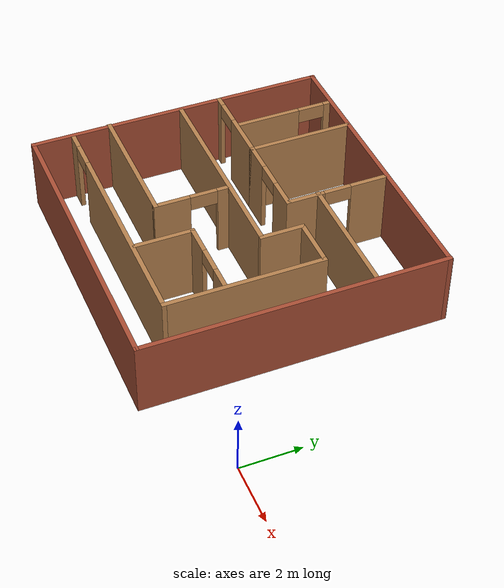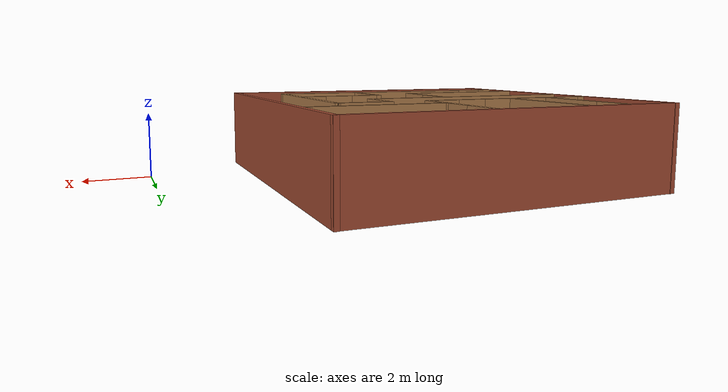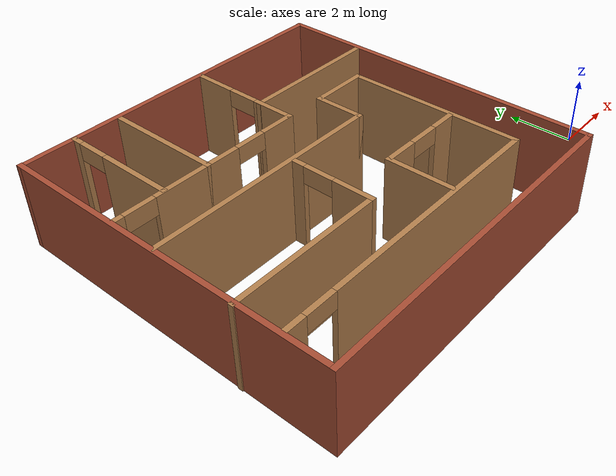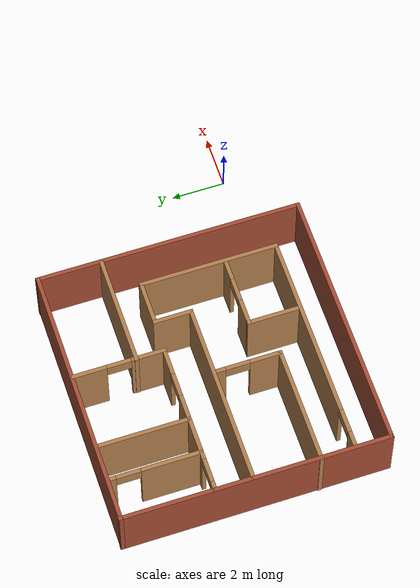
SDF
<?xml version='1.0'?>
<sdf version='1.7'>
  <model name='Arena_10m'>
    <pose>-6.53932 3.14683 0 0 -0 0</pose>
    <link name='Wall_43'>
      <collision name='Wall_43_Collision'>
        <geometry>
          <box>
            <size>10.0304 0.15 2.5</size>
          </box>
        </geometry>
        <pose>0 0 1.25 0 -0 0</pose>
      </collision>
      <visual name='Wall_43_Visual'>
        <pose>0 0 1.25 0 -0 0</pose>
        <geometry>
          <box>
            <size>10.0304 0.15 2.5</size>
          </box>
        </geometry>
        <material>
          <script>
            <uri>file://media/materials/scripts/gazebo.material</uri>
            <name>Gazebo/Bricks</name>
          </script>
          <ambient>1 1 1 1</ambient>
        </material>
        <meta>
          <layer>0</layer>
        </meta>
      </visual>
      <pose>-6.43555 0 0 0 -0 -1.5708</pose>
    </link>
    <link name='Wall_44'>
      <collision name='Wall_44_Collision'>
        <geometry>
          <box>
            <size>10 0.15 2.5</size>
          </box>
        </geometry>
        <pose>0 0 1.25 0 -0 0</pose>
      </collision>
      <visual name='Wall_44_Visual'>
        <pose>0 0 1.25 0 -0 0</pose>
        <geometry>
          <box>
            <size>10 0.15 2.5</size>
          </box>
        </geometry>
        <material>
          <script>
            <uri>file://media/materials/scripts/gazebo.material</uri>
            <name>Gazebo/Bricks</name>
          </script>
          <ambient>1 1 1 1</ambient>
        </material>
        <meta>
          <layer>0</layer>
        </meta>
      </visual>
      <pose>-1.51055 -4.94021 0 0 -0 0</pose>
    </link>
    <link name='Wall_45'>
      <collision name='Wall_45_Collision'>
        <geometry>
          <box>
            <size>10.0304 0.15 2.5</size>
          </box>
        </geometry>
        <pose>0 0 1.25 0 -0 0</pose>
      </collision>
      <visual name='Wall_45_Visual'>
        <pose>0 0 1.25 0 -0 0</pose>
        <geometry>
          <box>
            <size>10.0304 0.15 2.5</size>
          </box>
        </geometry>
        <material>
          <script>
            <uri>file://media/materials/scripts/gazebo.material</uri>
            <name>Gazebo/Bricks</name>
          </script>
          <ambient>1 1 1 1</ambient>
        </material>
        <meta>
          <layer>0</layer>
        </meta>
      </visual>
      <pose>3.41445 0 0 0 -0 1.5708</pose>
    </link>
    <link name='Wall_46'>
      <collision name='Wall_46_Collision'>
        <geometry>
          <box>
            <size>10 0.15 2.5</size>
          </box>
        </geometry>
        <pose>0 0 1.25 0 -0 0</pose>
      </collision>
      <visual name='Wall_46_Visual'>
        <pose>0 0 1.25 0 -0 0</pose>
        <geometry>
          <box>
            <size>10 0.15 2.5</size>
          </box>
        </geometry>
        <material>
          <script>
            <uri>file://media/materials/scripts/gazebo.material</uri>
            <name>Gazebo/Bricks</name>
          </script>
          <ambient>1 1 1 1</ambient>
        </material>
        <meta>
          <layer>0</layer>
        </meta>
      </visual>
      <pose>-1.51055 4.925 0 0 -0 3.14159</pose>
    </link>
    <link name='Wall_49'>
      <pose>-5.00511 1.51546 0 0 -0 0</pose>
      <visual name='Wall_49_Visual_0'>
        <pose>-1.30285 0 1.25 0 -0 0</pose>
        <geometry>
          <box>
            <size>0.394294 0.15 2.5</size>
          </box>
        </geometry>
        <material>
          <script>
            <uri>file://media/materials/scripts/gazebo.material</uri>
            <name>Gazebo/Wood</name>
          </script>
          <ambient>1 1 1 1</ambient>
        </material>
        <meta>
          <layer>0</layer>
        </meta>
      </visual>
      <collision name='Wall_49_Collision_0'>
        <geometry>
          <box>
            <size>0.394294 0.15 2.5</size>
          </box>
        </geometry>
        <pose>-1.30285 0 1.25 0 -0 0</pose>
      </collision>
      <visual name='Wall_49_Visual_1'>
        <pose>0.647147 0 1.25 0 -0 0</pose>
        <geometry>
          <box>
            <size>1.70571 0.15 2.5</size>
          </box>
        </geometry>
        <material>
          <script>
            <uri>file://media/materials/scripts/gazebo.material</uri>
            <name>Gazebo/Wood</name>
          </script>
          <ambient>1 1 1 1</ambient>
        </material>
        <meta>
          <layer>0</layer>
        </meta>
      </visual>
      <collision name='Wall_49_Collision_1'>
        <geometry>
          <box>
            <size>1.70571 0.15 2.5</size>
          </box>
        </geometry>
        <pose>0.647147 0 1.25 0 -0 0</pose>
      </collision>
      <visual name='Wall_49_Visual_2'>
        <pose>-0.655706 0 2.25 0 -0 0</pose>
        <geometry>
          <box>
            <size>0.9 0.15 0.5</size>
          </box>
        </geometry>
        <material>
          <script>
            <uri>file://media/materials/scripts/gazebo.material</uri>
            <name>Gazebo/Wood</name>
          </script>
          <ambient>1 1 1 1</ambient>
        </material>
        <meta>
          <layer>0</layer>
        </meta>
      </visual>
      <collision name='Wall_49_Collision_2'>
        <geometry>
          <box>
            <size>0.9 0.15 0.5</size>
          </box>
        </geometry>
        <pose>-0.655706 0 2.25 0 -0 0</pose>
      </collision>
    </link>
    <link name='Wall_50'>
      <collision name='Wall_50_Collision'>
        <geometry>
          <box>
            <size>3.5 0.15 2.5</size>
          </box>
        </geometry>
        <pose>0 0 1.25 0 -0 0</pose>
      </collision>
      <visual name='Wall_50_Visual'>
        <pose>0 0 1.25 0 -0 0</pose>
        <geometry>
          <box>
            <size>3.5 0.15 2.5</size>
          </box>
        </geometry>
        <material>
          <script>
            <uri>file://media/materials/scripts/gazebo.material</uri>
            <name>Gazebo/Wood</name>
          </script>
          <ambient>1 1 1 1</ambient>
        </material>
        <meta>
          <layer>0</layer>
        </meta>
      </visual>
      <pose>-3.58011 3.19046 0 0 -0 1.5708</pose>
    </link>
    <link name='Wall_52'>
      <pose>-4.91782 3.22333 0 0 -0 1.5708</pose>
      <visual name='Wall_52_Visual_0'>
        <pose>-0.625755 0 1.25 0 -0 0</pose>
        <geometry>
          <box>
            <size>2.24849 0.15 2.5</size>
          </box>
        </geometry>
        <material>
          <script>
            <uri>file://media/materials/scripts/gazebo.material</uri>
            <name>Gazebo/Wood</name>
          </script>
          <ambient>1 1 1 1</ambient>
        </material>
        <meta>
          <layer>0</layer>
        </meta>
      </visual>
      <collision name='Wall_52_Collision_0'>
        <geometry>
          <box>
            <size>2.24849 0.15 2.5</size>
          </box>
        </geometry>
        <pose>-0.625755 0 1.25 0 -0 0</pose>
      </collision>
      <visual name='Wall_52_Visual_1'>
        <pose>1.57424 0 1.25 0 -0 0</pose>
        <geometry>
          <box>
            <size>0.35151 0.15 2.5</size>
          </box>
        </geometry>
        <material>
          <script>
            <uri>file://media/materials/scripts/gazebo.material</uri>
            <name>Gazebo/Wood</name>
          </script>
          <ambient>1 1 1 1</ambient>
        </material>
        <meta>
          <layer>0</layer>
        </meta>
      </visual>
      <collision name='Wall_52_Collision_1'>
        <geometry>
          <box>
            <size>0.35151 0.15 2.5</size>
          </box>
        </geometry>
        <pose>1.57424 0 1.25 0 -0 0</pose>
      </collision>
      <visual name='Wall_52_Visual_2'>
        <pose>0.94849 0 2.25 0 -0 0</pose>
        <geometry>
          <box>
            <size>0.9 0.15 0.5</size>
          </box>
        </geometry>
        <material>
          <script>
            <uri>file://media/materials/scripts/gazebo.material</uri>
            <name>Gazebo/Wood</name>
          </script>
          <ambient>1 1 1 1</ambient>
        </material>
        <meta>
          <layer>0</layer>
        </meta>
      </visual>
      <collision name='Wall_52_Collision_2'>
        <geometry>
          <box>
            <size>0.9 0.15 0.5</size>
          </box>
        </geometry>
        <pose>0.94849 0 2.25 0 -0 0</pose>
      </collision>
    </link>
    <link name='Wall_55'>
      <collision name='Wall_55_Collision'>
        <geometry>
          <box>
            <size>7 0.15 2.5</size>
          </box>
        </geometry>
        <pose>0 0 1.25 0 -0 0</pose>
      </collision>
      <visual name='Wall_55_Visual'>
        <pose>0 0 1.25 0 -0 0</pose>
        <geometry>
          <box>
            <size>7 0.15 2.5</size>
          </box>
        </geometry>
        <material>
          <script>
            <uri>file://media/materials/scripts/gazebo.material</uri>
            <name>Gazebo/Wood</name>
          </script>
          <ambient>1 1 1 1</ambient>
        </material>
        <meta>
          <layer>0</layer>
        </meta>
      </visual>
      <pose>-2.97223 0.128097 0 0 -0 0</pose>
    </link>
    <link name='Wall_57'>
      <pose>-2.15511 1.51546 0 0 -0 0</pose>
      <visual name='Wall_57_Visual_0'>
        <pose>-0.979609 0 1.25 0 -0 0</pose>
        <geometry>
          <box>
            <size>1.04078 0.15 2.5</size>
          </box>
        </geometry>
        <material>
          <script>
            <uri>file://media/materials/scripts/gazebo.material</uri>
            <name>Gazebo/Wood</name>
          </script>
          <ambient>1 1 1 1</ambient>
        </material>
        <meta>
          <layer>0</layer>
        </meta>
      </visual>
      <collision name='Wall_57_Collision_0'>
        <geometry>
          <box>
            <size>1.04078 0.15 2.5</size>
          </box>
        </geometry>
        <pose>-0.979609 0 1.25 0 -0 0</pose>
      </collision>
      <visual name='Wall_57_Visual_1'>
        <pose>0.970391 0 1.25 0 -0 0</pose>
        <geometry>
          <box>
            <size>1.05922 0.15 2.5</size>
          </box>
        </geometry>
        <material>
          <script>
            <uri>file://media/materials/scripts/gazebo.material</uri>
            <name>Gazebo/Wood</name>
          </script>
          <ambient>1 1 1 1</ambient>
        </material>
        <meta>
          <layer>0</layer>
        </meta>
      </visual>
      <collision name='Wall_57_Collision_1'>
        <geometry>
          <box>
            <size>1.05922 0.15 2.5</size>
          </box>
        </geometry>
        <pose>0.970391 0 1.25 0 -0 0</pose>
      </collision>
      <visual name='Wall_57_Visual_2'>
        <pose>-0.009218 0 2.25 0 -0 0</pose>
        <geometry>
          <box>
            <size>0.9 0.15 0.5</size>
          </box>
        </geometry>
        <material>
          <script>
            <uri>file://media/materials/scripts/gazebo.material</uri>
            <name>Gazebo/Wood</name>
          </script>
          <ambient>1 1 1 1</ambient>
        </material>
        <meta>
          <layer>0</layer>
        </meta>
      </visual>
      <collision name='Wall_57_Collision_2'>
        <geometry>
          <box>
            <size>0.9 0.15 0.5</size>
          </box>
        </geometry>
        <pose>-0.009218 0 2.25 0 -0 0</pose>
      </collision>
    </link>
    <link name='Wall_58'>
      <pose>-0.730105 3.19046 0 0 -0 1.5708</pose>
      <visual name='Wall_58_Visual_0'>
        <pose>-1.09818 0 1.25 0 -0 0</pose>
        <geometry>
          <box>
            <size>1.30363 0.15 2.5</size>
          </box>
        </geometry>
        <material>
          <script>
            <uri>file://media/materials/scripts/gazebo.material</uri>
            <name>Gazebo/Wood</name>
          </script>
          <ambient>1 1 1 1</ambient>
        </material>
        <meta>
          <layer>0</layer>
        </meta>
      </visual>
      <collision name='Wall_58_Collision_0'>
        <geometry>
          <box>
            <size>1.30363 0.15 2.5</size>
          </box>
        </geometry>
        <pose>-1.09818 0 1.25 0 -0 0</pose>
      </collision>
      <visual name='Wall_58_Visual_1'>
        <pose>1.10182 0 1.25 0 -0 0</pose>
        <geometry>
          <box>
            <size>1.29637 0.15 2.5</size>
          </box>
        </geometry>
        <material>
          <script>
            <uri>file://media/materials/scripts/gazebo.material</uri>
            <name>Gazebo/Wood</name>
          </script>
          <ambient>1 1 1 1</ambient>
        </material>
        <meta>
          <layer>0</layer>
        </meta>
      </visual>
      <collision name='Wall_58_Collision_1'>
        <geometry>
          <box>
            <size>1.29637 0.15 2.5</size>
          </box>
        </geometry>
        <pose>1.10182 0 1.25 0 -0 0</pose>
      </collision>
      <visual name='Wall_58_Visual_2'>
        <pose>0.003633 0 2.25 0 -0 0</pose>
        <geometry>
          <box>
            <size>0.9 0.15 0.5</size>
          </box>
        </geometry>
        <material>
          <script>
            <uri>file://media/materials/scripts/gazebo.material</uri>
            <name>Gazebo/Wood</name>
          </script>
          <ambient>1 1 1 1</ambient>
        </material>
        <meta>
          <layer>0</layer>
        </meta>
      </visual>
      <collision name='Wall_58_Collision_2'>
        <geometry>
          <box>
            <size>0.9 0.15 0.5</size>
          </box>
        </geometry>
        <pose>0.003633 0 2.25 0 -0 0</pose>
      </collision>
    </link>
    <link name='Wall_60'>
      <collision name='Wall_60_Collision'>
        <geometry>
          <box>
            <size>4.25 0.15 2.5</size>
          </box>
        </geometry>
        <pose>0 0 1.25 0 -0 0</pose>
      </collision>
      <visual name='Wall_60_Visual'>
        <pose>0 0 1.25 0 -0 0</pose>
        <geometry>
          <box>
            <size>4.25 0.15 2.5</size>
          </box>
        </geometry>
        <material>
          <script>
            <uri>file://media/materials/scripts/gazebo.material</uri>
            <name>Gazebo/Wood</name>
          </script>
          <ambient>1 1 1 1</ambient>
        </material>
        <meta>
          <layer>0</layer>
        </meta>
      </visual>
      <pose>1.30568 2.55409 0 0 -0 0</pose>
    </link>
    <link name='Wall_62'>
      <collision name='Wall_62_Collision'>
        <geometry>
          <box>
            <size>1.5 0.15 2.5</size>
          </box>
        </geometry>
        <pose>0 0 1.25 0 -0 0</pose>
      </collision>
      <visual name='Wall_62_Visual'>
        <pose>0 0 1.25 0 -0 0</pose>
        <geometry>
          <box>
            <size>1.5 0.15 2.5</size>
          </box>
        </geometry>
        <material>
          <script>
            <uri>file://media/materials/scripts/gazebo.material</uri>
            <name>Gazebo/Wood</name>
          </script>
          <ambient>1 1 1 1</ambient>
        </material>
        <meta>
          <layer>0</layer>
        </meta>
      </visual>
      <pose>0.452771 0.803097 0 0 -0 1.5708</pose>
    </link>
    <link name='Wall_63'>
      <collision name='Wall_63_Collision'>
        <geometry>
          <box>
            <size>1.75 0.15 2.5</size>
          </box>
        </geometry>
        <pose>0 0 1.25 0 -0 0</pose>
      </collision>
      <visual name='Wall_63_Visual'>
        <pose>0 0 1.25 0 -0 0</pose>
        <geometry>
          <box>
            <size>1.75 0.15 2.5</size>
          </box>
        </geometry>
        <material>
          <script>
            <uri>file://media/materials/scripts/gazebo.material</uri>
            <name>Gazebo/Wood</name>
          </script>
          <ambient>1 1 1 1</ambient>
        </material>
        <meta>
          <layer>0</layer>
        </meta>
      </visual>
      <pose>1.25277 1.4781 0 0 -0 0</pose>
    </link>
    <link name='Wall_64'>
      <collision name='Wall_64_Collision'>
        <geometry>
          <box>
            <size>5.25 0.15 2.5</size>
          </box>
        </geometry>
        <pose>0 0 1.25 0 -0 0</pose>
      </collision>
      <visual name='Wall_64_Visual'>
        <pose>0 0 1.25 0 -0 0</pose>
        <geometry>
          <box>
            <size>5.25 0.15 2.5</size>
          </box>
        </geometry>
        <material>
          <script>
            <uri>file://media/materials/scripts/gazebo.material</uri>
            <name>Gazebo/Wood</name>
          </script>
          <ambient>1 1 1 1</ambient>
        </material>
        <meta>
          <layer>0</layer>
        </meta>
      </visual>
      <pose>2.05277 -1.0719 0 0 -0 -1.5708</pose>
    </link>
    <link name='Wall_65'>
      <pose>-2.12223 -3.6219 0 0 -0 3.14159</pose>
      <visual name='Wall_65_Visual_0'>
        <pose>-0.728953 0 1.25 0 -0 0</pose>
        <geometry>
          <box>
            <size>7.04209 0.15 2.5</size>
          </box>
        </geometry>
        <material>
          <script>
            <uri>file://media/materials/scripts/gazebo.material</uri>
            <name>Gazebo/Wood</name>
          </script>
          <ambient>1 1 1 1</ambient>
        </material>
        <meta>
          <layer>0</layer>
        </meta>
      </visual>
      <collision name='Wall_65_Collision_0'>
        <geometry>
          <box>
            <size>7.04209 0.15 2.5</size>
          </box>
        </geometry>
        <pose>-0.728953 0 1.25 0 -0 0</pose>
      </collision>
      <visual name='Wall_65_Visual_1'>
        <pose>3.97105 0 1.25 0 -0 0</pose>
        <geometry>
          <box>
            <size>0.557906 0.15 2.5</size>
          </box>
        </geometry>
        <material>
          <script>
            <uri>file://media/materials/scripts/gazebo.material</uri>
            <name>Gazebo/Wood</name>
          </script>
          <ambient>1 1 1 1</ambient>
        </material>
        <meta>
          <layer>0</layer>
        </meta>
      </visual>
      <collision name='Wall_65_Collision_1'>
        <geometry>
          <box>
            <size>0.557906 0.15 2.5</size>
          </box>
        </geometry>
        <pose>3.97105 0 1.25 0 -0 0</pose>
      </collision>
      <visual name='Wall_65_Visual_2'>
        <pose>3.24209 0 2.25 0 -0 0</pose>
        <geometry>
          <box>
            <size>0.9 0.15 0.5</size>
          </box>
        </geometry>
        <material>
          <script>
            <uri>file://media/materials/scripts/gazebo.material</uri>
            <name>Gazebo/Wood</name>
          </script>
          <ambient>1 1 1 1</ambient>
        </material>
        <meta>
          <layer>0</layer>
        </meta>
      </visual>
      <collision name='Wall_65_Collision_2'>
        <geometry>
          <box>
            <size>0.9 0.15 0.5</size>
          </box>
        </geometry>
        <pose>3.24209 0 2.25 0 -0 0</pose>
      </collision>
    </link>
    <link name='Wall_68'>
      <collision name='Wall_68_Collision'>
        <geometry>
          <box>
            <size>4.5 0.15 2.5</size>
          </box>
        </geometry>
        <pose>0 0 1.25 0 -0 0</pose>
      </collision>
      <visual name='Wall_68_Visual'>
        <pose>0 0 1.25 0 -0 0</pose>
        <geometry>
          <box>
            <size>4.5 0.15 2.5</size>
          </box>
        </geometry>
        <material>
          <script>
            <uri>file://media/materials/scripts/gazebo.material</uri>
            <name>Gazebo/Wood</name>
          </script>
          <ambient>1 1 1 1</ambient>
        </material>
        <meta>
          <layer>0</layer>
        </meta>
      </visual>
      <pose>-4.28932 -2.34591 0 0 -0 0</pose>
    </link>
    <link name='Wall_69'>
      <pose>-2.11432 -1.17091 0 0 -0 1.5708</pose>
      <visual name='Wall_69_Visual_0'>
        <pose>-0.6425 0 1.25 0 -0 0</pose>
        <geometry>
          <box>
            <size>1.215 0.15 2.5</size>
          </box>
        </geometry>
        <material>
          <script>
            <uri>file://media/materials/scripts/gazebo.material</uri>
            <name>Gazebo/Wood</name>
          </script>
          <ambient>1 1 1 1</ambient>
        </material>
        <meta>
          <layer>0</layer>
        </meta>
      </visual>
      <collision name='Wall_69_Collision_0'>
        <geometry>
          <box>
            <size>1.215 0.15 2.5</size>
          </box>
        </geometry>
        <pose>-0.6425 0 1.25 0 -0 0</pose>
      </collision>
      <visual name='Wall_69_Visual_1'>
        <pose>1.0575 0 1.25 0 -0 0</pose>
        <geometry>
          <box>
            <size>0.385 0.15 2.5</size>
          </box>
        </geometry>
        <material>
          <script>
            <uri>file://media/materials/scripts/gazebo.material</uri>
            <name>Gazebo/Wood</name>
          </script>
          <ambient>1 1 1 1</ambient>
        </material>
        <meta>
          <layer>0</layer>
        </meta>
      </visual>
      <collision name='Wall_69_Collision_1'>
        <geometry>
          <box>
            <size>0.385 0.15 2.5</size>
          </box>
        </geometry>
        <pose>1.0575 0 1.25 0 -0 0</pose>
      </collision>
      <visual name='Wall_69_Visual_2'>
        <pose>0.415 0 2.25 0 -0 0</pose>
        <geometry>
          <box>
            <size>0.9 0.15 0.5</size>
          </box>
        </geometry>
        <material>
          <script>
            <uri>file://media/materials/scripts/gazebo.material</uri>
            <name>Gazebo/Wood</name>
          </script>
          <ambient>1 1 1 1</ambient>
        </material>
        <meta>
          <layer>0</layer>
        </meta>
      </visual>
      <collision name='Wall_69_Collision_2'>
        <geometry>
          <box>
            <size>0.9 0.15 0.5</size>
          </box>
        </geometry>
        <pose>0.415 0 2.25 0 -0 0</pose>
      </collision>
    </link>
    <link name='Wall_71'>
      <collision name='Wall_71_Collision'>
        <geometry>
          <box>
            <size>2 0.15 2.5</size>
          </box>
        </geometry>
        <pose>0 0 1.25 0 -0 0</pose>
      </collision>
      <visual name='Wall_71_Visual'>
        <pose>0 0 1.25 0 -0 0</pose>
        <geometry>
          <box>
            <size>2 0.15 2.5</size>
          </box>
        </geometry>
        <material>
          <script>
            <uri>file://media/materials/scripts/gazebo.material</uri>
            <name>Gazebo/Wood</name>
          </script>
          <ambient>1 1 1 1</ambient>
        </material>
        <meta>
          <layer>0</layer>
        </meta>
      </visual>
      <pose>-0.624324 -2.61091 0 0 -0 1.5708</pose>
    </link>
    <link name='Wall_72'>
      <pose>0.675676 -1.68591 0 0 -0 0</pose>
      <visual name='Wall_72_Visual_0'>
        <pose>-0.8575 0 1.25 0 -0 0</pose>
        <geometry>
          <box>
            <size>1.035 0.15 2.5</size>
          </box>
        </geometry>
        <material>
          <script>
            <uri>file://media/materials/scripts/gazebo.material</uri>
            <name>Gazebo/Wood</name>
          </script>
          <ambient>1 1 1 1</ambient>
        </material>
        <meta>
          <layer>0</layer>
        </meta>
      </visual>
      <collision name='Wall_72_Collision_0'>
        <geometry>
          <box>
            <size>1.035 0.15 2.5</size>
          </box>
        </geometry>
        <pose>-0.8575 0 1.25 0 -0 0</pose>
      </collision>
      <visual name='Wall_72_Visual_1'>
        <pose>0.9675 0 1.25 0 -0 0</pose>
        <geometry>
          <box>
            <size>0.815 0.15 2.5</size>
          </box>
        </geometry>
        <material>
          <script>
            <uri>file://media/materials/scripts/gazebo.material</uri>
            <name>Gazebo/Wood</name>
          </script>
          <ambient>1 1 1 1</ambient>
        </material>
        <meta>
          <layer>0</layer>
        </meta>
      </visual>
      <collision name='Wall_72_Collision_1'>
        <geometry>
          <box>
            <size>0.815 0.15 2.5</size>
          </box>
        </geometry>
        <pose>0.9675 0 1.25 0 -0 0</pose>
      </collision>
      <visual name='Wall_72_Visual_2'>
        <pose>0.11 0 2.25 0 -0 0</pose>
        <geometry>
          <box>
            <size>0.9 0.15 0.5</size>
          </box>
        </geometry>
        <material>
          <script>
            <uri>file://media/materials/scripts/gazebo.material</uri>
            <name>Gazebo/Wood</name>
          </script>
          <ambient>1 1 1 1</ambient>
        </material>
        <meta>
          <layer>0</layer>
        </meta>
      </visual>
      <collision name='Wall_72_Collision_2'>
        <geometry>
          <box>
            <size>0.9 0.15 0.5</size>
          </box>
        </geometry>
        <pose>0.11 0 2.25 0 -0 0</pose>
      </collision>
    </link>
    <static>1</static>
  </model>
</sdf>
